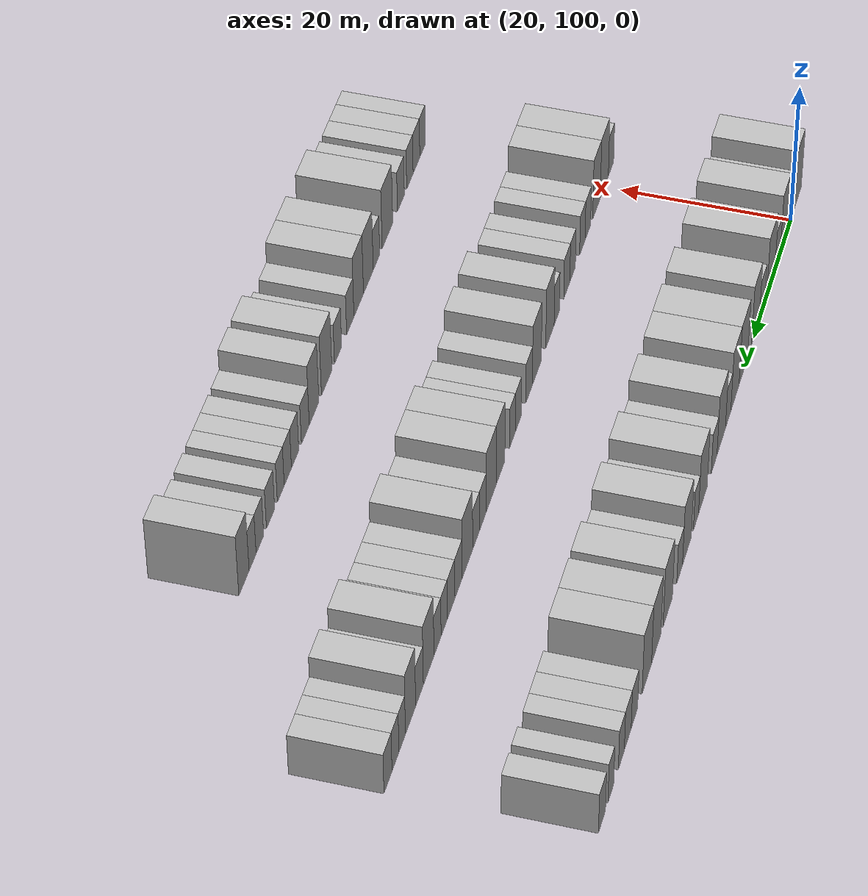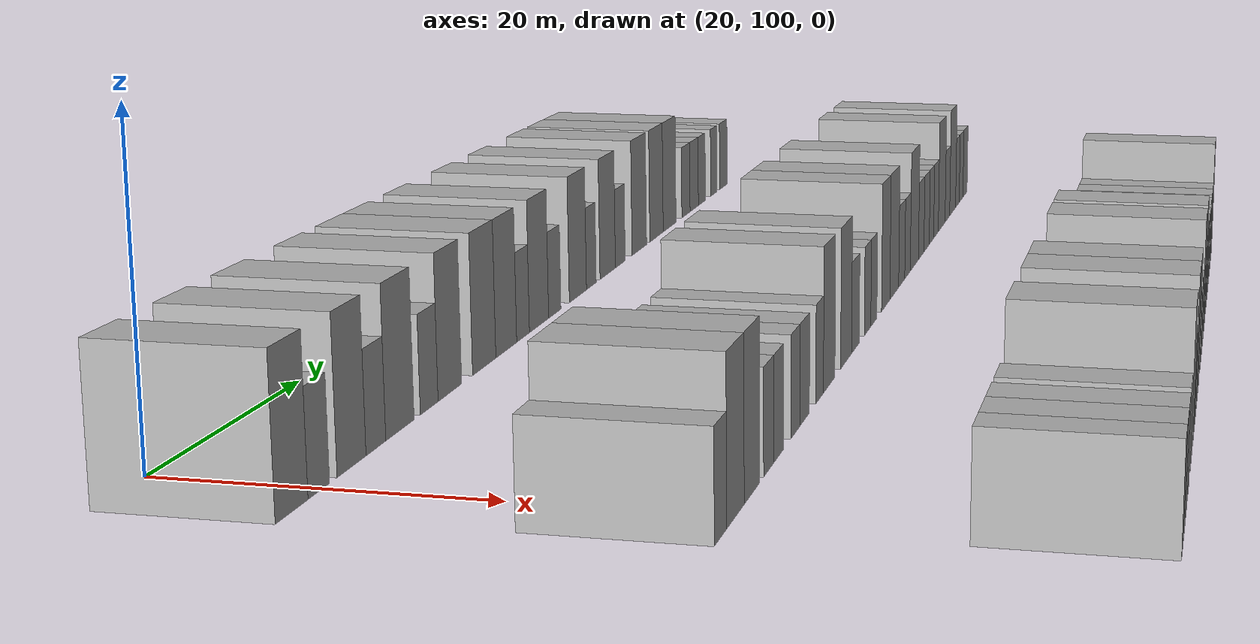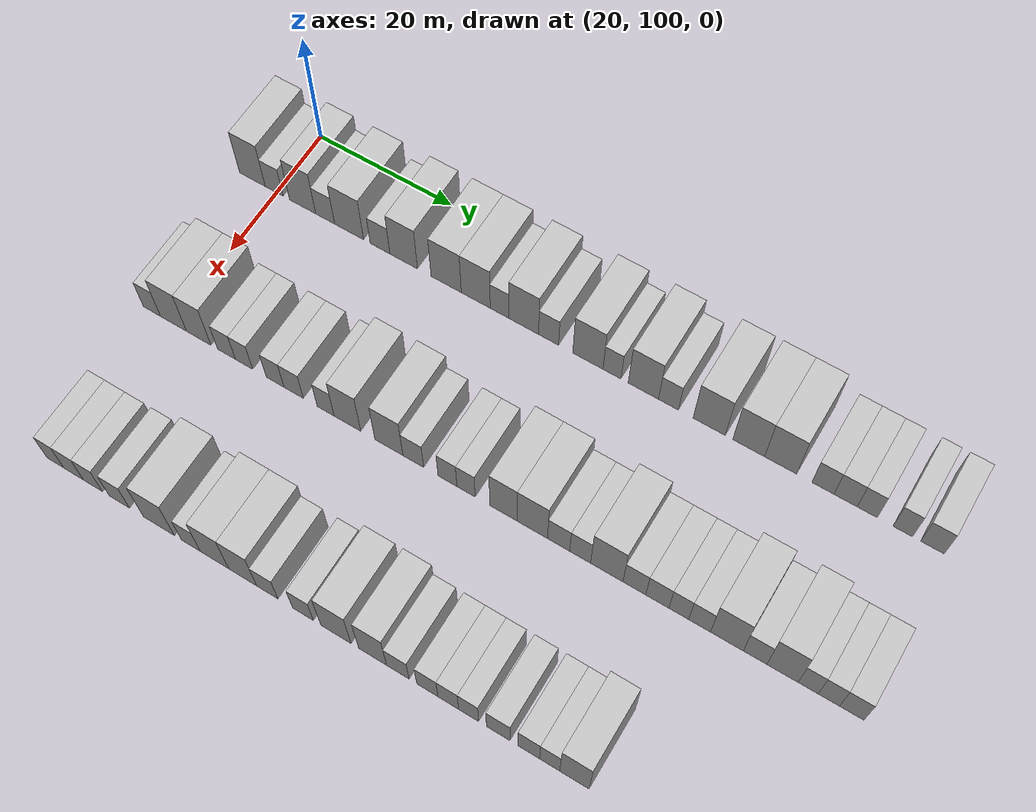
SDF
<sdf version="1.6">
 <world name="default">
  <model name="building_119">
   <static>1</static>
   <pose>25.0000 96.2019 0 0.000000 0.000000 0.000000</pose>
   <link name="link">
    <pose>0 0 4.50 0 0 0</pose>
    <collision name="collision"><geometry><box><size>10.0000 4.0045 9.0000</size></box></geometry></collision>
    <visual name="visual">
     <cast_shadows>0</cast_shadows>
     <geometry><box><size>10.0000 4.0045 9.0000</size></box></geometry>
     <material>
      <script>
       <uri>model://HANNAS_wall/materials/scripts</uri>
       <uri>model://HANNAS_wall/materials/textures</uri>
       <name>vrc/HANNAS_wall</name>
      </script>
     </material>
    </visual>
   </link>
  </model>
  <model name="building_120">
   <static>1</static>
   <pose>25.0000 99.5927 0 0.000000 0.000000 0.000000</pose>
   <link name="link">
    <pose>0 0 3.00 0 0 0</pose>
    <collision name="collision"><geometry><box><size>10.0000 2.7771 6.0000</size></box></geometry></collision>
    <visual name="visual">
     <cast_shadows>0</cast_shadows>
     <geometry><box><size>10.0000 2.7771 6.0000</size></box></geometry>
     <material>
      <script>
       <uri>model://HANNAS_wall/materials/scripts</uri>
       <uri>model://HANNAS_wall/materials/textures</uri>
       <name>vrc/HANNAS_wall</name>
      </script>
     </material>
    </visual>
   </link>
  </model>
  <model name="building_121">
   <static>1</static>
   <pose>25.0000 103.9882 0 0.000000 0.000000 0.000000</pose>
   <link name="link">
    <pose>0 0 4.50 0 0 0</pose>
    <collision name="collision"><geometry><box><size>10.0000 4.0139 9.0000</size></box></geometry></collision>
    <visual name="visual">
     <cast_shadows>0</cast_shadows>
     <geometry><box><size>10.0000 4.0139 9.0000</size></box></geometry>
     <material>
      <script>
       <uri>model://HANNAS_wall/materials/scripts</uri>
       <uri>model://HANNAS_wall/materials/textures</uri>
       <name>vrc/HANNAS_wall</name>
      </script>
     </material>
    </visual>
   </link>
  </model>
  <model name="building_122">
   <static>1</static>
   <pose>25.0000 107.4411 0 0.000000 0.000000 0.000000</pose>
   <link name="link">
    <pose>0 0 3.00 0 0 0</pose>
    <collision name="collision"><geometry><box><size>10.0000 2.8917 6.0000</size></box></geometry></collision>
    <visual name="visual">
     <cast_shadows>0</cast_shadows>
     <geometry><box><size>10.0000 2.8917 6.0000</size></box></geometry>
     <material>
      <script>
       <uri>model://HANNAS_wall/materials/scripts</uri>
       <uri>model://HANNAS_wall/materials/textures</uri>
       <name>vrc/HANNAS_wall</name>
      </script>
     </material>
    </visual>
   </link>
  </model>
  <model name="building_123">
   <static>1</static>
   <pose>25.0000 111.0740 0 0.000000 0.000000 0.000000</pose>
   <link name="link">
    <pose>0 0 4.50 0 0 0</pose>
    <collision name="collision"><geometry><box><size>10.0000 4.3742 9.0000</size></box></geometry></collision>
    <visual name="visual">
     <cast_shadows>0</cast_shadows>
     <geometry><box><size>10.0000 4.3742 9.0000</size></box></geometry>
     <material>
      <script>
       <uri>model://HANNAS_wall/materials/scripts</uri>
       <uri>model://HANNAS_wall/materials/textures</uri>
       <name>vrc/HANNAS_wall</name>
      </script>
     </material>
    </visual>
   </link>
  </model>
  <model name="building_124">
   <static>1</static>
   <pose>25.0000 115.7346 0 0.000000 0.000000 0.000000</pose>
   <link name="link">
    <pose>0 0 3.00 0 0 0</pose>
    <collision name="collision"><geometry><box><size>10.0000 2.9471 6.0000</size></box></geometry></collision>
    <visual name="visual">
     <cast_shadows>0</cast_shadows>
     <geometry><box><size>10.0000 2.9471 6.0000</size></box></geometry>
     <material>
      <script>
       <uri>model://HANNAS_wall/materials/scripts</uri>
       <uri>model://HANNAS_wall/materials/textures</uri>
       <name>vrc/HANNAS_wall</name>
      </script>
     </material>
    </visual>
   </link>
  </model>
  <model name="building_125">
   <static>1</static>
   <pose>25.0000 119.2594 0 0.000000 0.000000 0.000000</pose>
   <link name="link">
    <pose>0 0 4.50 0 0 0</pose>
    <collision name="collision"><geometry><box><size>10.0000 4.1025 9.0000</size></box></geometry></collision>
    <visual name="visual">
     <cast_shadows>0</cast_shadows>
     <geometry><box><size>10.0000 4.1025 9.0000</size></box></geometry>
     <material>
      <script>
       <uri>model://HANNAS_wall/materials/scripts</uri>
       <uri>model://HANNAS_wall/materials/textures</uri>
       <name>vrc/HANNAS_wall</name>
      </script>
     </material>
    </visual>
   </link>
  </model>
  <model name="building_126">
   <static>1</static>
   <pose>25.0000 125.5218 0 0.000000 0.000000 0.000000</pose>
   <link name="link">
    <pose>0 0 4.50 0 0 0</pose>
    <collision name="collision"><geometry><box><size>10.0000 4.4224 9.0000</size></box></geometry></collision>
    <visual name="visual">
     <cast_shadows>0</cast_shadows>
     <geometry><box><size>10.0000 4.4224 9.0000</size></box></geometry>
     <material>
      <script>
       <uri>model://HANNAS_wall/materials/scripts</uri>
       <uri>model://HANNAS_wall/materials/textures</uri>
       <name>vrc/HANNAS_wall</name>
      </script>
     </material>
    </visual>
   </link>
  </model>
  <model name="building_127">
   <static>1</static>
   <pose>25.0000 129.8362 0 0.000000 0.000000 0.000000</pose>
   <link name="link">
    <pose>0 0 4.50 0 0 0</pose>
    <collision name="collision"><geometry><box><size>10.0000 4.2064 9.0000</size></box></geometry></collision>
    <visual name="visual">
     <cast_shadows>0</cast_shadows>
     <geometry><box><size>10.0000 4.2064 9.0000</size></box></geometry>
     <material>
      <script>
       <uri>model://HANNAS_wall/materials/scripts</uri>
       <uri>model://HANNAS_wall/materials/textures</uri>
       <name>vrc/HANNAS_wall</name>
      </script>
     </material>
    </visual>
   </link>
  </model>
  <model name="building_128">
   <static>1</static>
   <pose>25.0000 133.2820 0 0.000000 0.000000 0.000000</pose>
   <link name="link">
    <pose>0 0 3.00 0 0 0</pose>
    <collision name="collision"><geometry><box><size>10.0000 2.6850 6.0000</size></box></geometry></collision>
    <visual name="visual">
     <cast_shadows>0</cast_shadows>
     <geometry><box><size>10.0000 2.6850 6.0000</size></box></geometry>
     <material>
      <script>
       <uri>model://HANNAS_wall/materials/scripts</uri>
       <uri>model://HANNAS_wall/materials/textures</uri>
       <name>vrc/HANNAS_wall</name>
      </script>
     </material>
    </visual>
   </link>
  </model>
  <model name="building_129">
   <static>1</static>
   <pose>25.0000 136.7376 0 0.000000 0.000000 0.000000</pose>
   <link name="link">
    <pose>0 0 4.50 0 0 0</pose>
    <collision name="collision"><geometry><box><size>10.0000 4.2264 9.0000</size></box></geometry></collision>
    <visual name="visual">
     <cast_shadows>0</cast_shadows>
     <geometry><box><size>10.0000 4.2264 9.0000</size></box></geometry>
     <material>
      <script>
       <uri>model://HANNAS_wall/materials/scripts</uri>
       <uri>model://HANNAS_wall/materials/textures</uri>
       <name>vrc/HANNAS_wall</name>
      </script>
     </material>
    </visual>
   </link>
  </model>
  <model name="building_130">
   <static>1</static>
   <pose>25.0000 140.2666 0 0.000000 0.000000 0.000000</pose>
   <link name="link">
    <pose>0 0 3.00 0 0 0</pose>
    <collision name="collision"><geometry><box><size>10.0000 2.8315 6.0000</size></box></geometry></collision>
    <visual name="visual">
     <cast_shadows>0</cast_shadows>
     <geometry><box><size>10.0000 2.8315 6.0000</size></box></geometry>
     <material>
      <script>
       <uri>model://HANNAS_wall/materials/scripts</uri>
       <uri>model://HANNAS_wall/materials/textures</uri>
       <name>vrc/HANNAS_wall</name>
      </script>
     </material>
    </visual>
   </link>
  </model>
  <model name="building_131">
   <static>1</static>
   <pose>25.0000 145.7941 0 0.000000 0.000000 0.000000</pose>
   <link name="link">
    <pose>0 0 4.50 0 0 0</pose>
    <collision name="collision"><geometry><box><size>10.0000 4.2235 9.0000</size></box></geometry></collision>
    <visual name="visual">
     <cast_shadows>0</cast_shadows>
     <geometry><box><size>10.0000 4.2235 9.0000</size></box></geometry>
     <material>
      <script>
       <uri>model://HANNAS_wall/materials/scripts</uri>
       <uri>model://HANNAS_wall/materials/textures</uri>
       <name>vrc/HANNAS_wall</name>
      </script>
     </material>
    </visual>
   </link>
  </model>
  <model name="building_132">
   <static>1</static>
   <pose>25.0000 149.1505 0 0.000000 0.000000 0.000000</pose>
   <link name="link">
    <pose>0 0 3.00 0 0 0</pose>
    <collision name="collision"><geometry><box><size>10.0000 2.4893 6.0000</size></box></geometry></collision>
    <visual name="visual">
     <cast_shadows>0</cast_shadows>
     <geometry><box><size>10.0000 2.4893 6.0000</size></box></geometry>
     <material>
      <script>
       <uri>model://HANNAS_wall/materials/scripts</uri>
       <uri>model://HANNAS_wall/materials/textures</uri>
       <name>vrc/HANNAS_wall</name>
      </script>
     </material>
    </visual>
   </link>
  </model>
  <model name="building_133">
   <static>1</static>
   <pose>25.0000 153.4714 0 0.000000 0.000000 0.000000</pose>
   <link name="link">
    <pose>0 0 4.50 0 0 0</pose>
    <collision name="collision"><geometry><box><size>10.0000 4.1526 9.0000</size></box></geometry></collision>
    <visual name="visual">
     <cast_shadows>0</cast_shadows>
     <geometry><box><size>10.0000 4.1526 9.0000</size></box></geometry>
     <material>
      <script>
       <uri>model://HANNAS_wall/materials/scripts</uri>
       <uri>model://HANNAS_wall/materials/textures</uri>
       <name>vrc/HANNAS_wall</name>
      </script>
     </material>
    </visual>
   </link>
  </model>
  <model name="building_134">
   <static>1</static>
   <pose>25.0000 156.9075 0 0.000000 0.000000 0.000000</pose>
   <link name="link">
    <pose>0 0 3.00 0 0 0</pose>
    <collision name="collision"><geometry><box><size>10.0000 2.7196 6.0000</size></box></geometry></collision>
    <visual name="visual">
     <cast_shadows>0</cast_shadows>
     <geometry><box><size>10.0000 2.7196 6.0000</size></box></geometry>
     <material>
      <script>
       <uri>model://HANNAS_wall/materials/scripts</uri>
       <uri>model://HANNAS_wall/materials/textures</uri>
       <name>vrc/HANNAS_wall</name>
      </script>
     </material>
    </visual>
   </link>
  </model>
  <model name="building_135">
   <static>1</static>
   <pose>25.0000 162.4224 0 0.000000 0.000000 0.000000</pose>
   <link name="link">
    <pose>0 0 4.50 0 0 0</pose>
    <collision name="collision"><geometry><box><size>10.0000 4.3101 9.0000</size></box></geometry></collision>
    <visual name="visual">
     <cast_shadows>0</cast_shadows>
     <geometry><box><size>10.0000 4.3101 9.0000</size></box></geometry>
     <material>
      <script>
       <uri>model://HANNAS_wall/materials/scripts</uri>
       <uri>model://HANNAS_wall/materials/textures</uri>
       <name>vrc/HANNAS_wall</name>
      </script>
     </material>
    </visual>
   </link>
  </model>
  <model name="building_136">
   <static>1</static>
   <pose>25.0000 167.6864 0 0.000000 0.000000 0.000000</pose>
   <link name="link">
    <pose>0 0 4.50 0 0 0</pose>
    <collision name="collision"><geometry><box><size>10.0000 4.2180 9.0000</size></box></geometry></collision>
    <visual name="visual">
     <cast_shadows>0</cast_shadows>
     <geometry><box><size>10.0000 4.2180 9.0000</size></box></geometry>
     <material>
      <script>
       <uri>model://HANNAS_wall/materials/scripts</uri>
       <uri>model://HANNAS_wall/materials/textures</uri>
       <name>vrc/HANNAS_wall</name>
      </script>
     </material>
    </visual>
   </link>
  </model>
  <model name="building_137">
   <static>1</static>
   <pose>25.0000 171.9000 0 0.000000 0.000000 0.000000</pose>
   <link name="link">
    <pose>0 0 4.50 0 0 0</pose>
    <collision name="collision"><geometry><box><size>10.0000 4.2091 9.0000</size></box></geometry></collision>
    <visual name="visual">
     <cast_shadows>0</cast_shadows>
     <geometry><box><size>10.0000 4.2091 9.0000</size></box></geometry>
     <material>
      <script>
       <uri>model://HANNAS_wall/materials/scripts</uri>
       <uri>model://HANNAS_wall/materials/textures</uri>
       <name>vrc/HANNAS_wall</name>
      </script>
     </material>
    </visual>
   </link>
  </model>
  <model name="building_138">
   <static>1</static>
   <pose>25.0000 177.4347 0 0.000000 0.000000 0.000000</pose>
   <link name="link">
    <pose>0 0 3.00 0 0 0</pose>
    <collision name="collision"><geometry><box><size>10.0000 2.8603 6.0000</size></box></geometry></collision>
    <visual name="visual">
     <cast_shadows>0</cast_shadows>
     <geometry><box><size>10.0000 2.8603 6.0000</size></box></geometry>
     <material>
      <script>
       <uri>model://HANNAS_wall/materials/scripts</uri>
       <uri>model://HANNAS_wall/materials/textures</uri>
       <name>vrc/HANNAS_wall</name>
      </script>
     </material>
    </visual>
   </link>
  </model>
  <model name="building_139">
   <static>1</static>
   <pose>25.0000 180.3545 0 0.000000 0.000000 0.000000</pose>
   <link name="link">
    <pose>0 0 3.00 0 0 0</pose>
    <collision name="collision"><geometry><box><size>10.0000 2.9793 6.0000</size></box></geometry></collision>
    <visual name="visual">
     <cast_shadows>0</cast_shadows>
     <geometry><box><size>10.0000 2.9793 6.0000</size></box></geometry>
     <material>
      <script>
       <uri>model://HANNAS_wall/materials/scripts</uri>
       <uri>model://HANNAS_wall/materials/textures</uri>
       <name>vrc/HANNAS_wall</name>
      </script>
     </material>
    </visual>
   </link>
  </model>
  <model name="building_140">
   <static>1</static>
   <pose>25.0000 183.1309 0 0.000000 0.000000 0.000000</pose>
   <link name="link">
    <pose>0 0 3.00 0 0 0</pose>
    <collision name="collision"><geometry><box><size>10.0000 2.5733 6.0000</size></box></geometry></collision>
    <visual name="visual">
     <cast_shadows>0</cast_shadows>
     <geometry><box><size>10.0000 2.5733 6.0000</size></box></geometry>
     <material>
      <script>
       <uri>model://HANNAS_wall/materials/scripts</uri>
       <uri>model://HANNAS_wall/materials/textures</uri>
       <name>vrc/HANNAS_wall</name>
      </script>
     </material>
    </visual>
   </link>
  </model>
  <model name="building_141">
   <static>1</static>
   <pose>25.0000 187.6512 0 0.000000 0.000000 0.000000</pose>
   <link name="link">
    <pose>0 0 3.00 0 0 0</pose>
    <collision name="collision"><geometry><box><size>10.0000 2.4674 6.0000</size></box></geometry></collision>
    <visual name="visual">
     <cast_shadows>0</cast_shadows>
     <geometry><box><size>10.0000 2.4674 6.0000</size></box></geometry>
     <material>
      <script>
       <uri>model://HANNAS_wall/materials/scripts</uri>
       <uri>model://HANNAS_wall/materials/textures</uri>
       <name>vrc/HANNAS_wall</name>
      </script>
     </material>
    </visual>
   </link>
  </model>
  <model name="building_142">
   <static>1</static>
   <pose>25.0000 191.3741 0 0.000000 0.000000 0.000000</pose>
   <link name="link">
    <pose>0 0 3.00 0 0 0</pose>
    <collision name="collision"><geometry><box><size>10.0000 2.9784 6.0000</size></box></geometry></collision>
    <visual name="visual">
     <cast_shadows>0</cast_shadows>
     <geometry><box><size>10.0000 2.9784 6.0000</size></box></geometry>
     <material>
      <script>
       <uri>model://HANNAS_wall/materials/scripts</uri>
       <uri>model://HANNAS_wall/materials/textures</uri>
       <name>vrc/HANNAS_wall</name>
      </script>
     </material>
    </visual>
   </link>
  </model>
  <model name="building_311">
   <static>1</static>
   <pose>47.0000 96.7941 0 0.000000 0.000000 0.000000</pose>
   <link name="link">
    <pose>0 0 3.00 0 0 0</pose>
    <collision name="collision"><geometry><box><size>10.0000 2.6091 6.0000</size></box></geometry></collision>
    <visual name="visual">
     <cast_shadows>0</cast_shadows>
     <geometry><box><size>10.0000 2.6091 6.0000</size></box></geometry>
     <material>
      <script>
       <uri>model://HANNAS_wall/materials/scripts</uri>
       <uri>model://HANNAS_wall/materials/textures</uri>
       <name>vrc/HANNAS_wall</name>
      </script>
     </material>
    </visual>
   </link>
  </model>
  <model name="building_312">
   <static>1</static>
   <pose>47.0000 100.0630 0 0.000000 0.000000 0.000000</pose>
   <link name="link">
    <pose>0 0 4.50 0 0 0</pose>
    <collision name="collision"><geometry><box><size>10.0000 3.9286 9.0000</size></box></geometry></collision>
    <visual name="visual">
     <cast_shadows>0</cast_shadows>
     <geometry><box><size>10.0000 3.9286 9.0000</size></box></geometry>
     <material>
      <script>
       <uri>model://HANNAS_wall/materials/scripts</uri>
       <uri>model://HANNAS_wall/materials/textures</uri>
       <name>vrc/HANNAS_wall</name>
      </script>
     </material>
    </visual>
   </link>
  </model>
  <model name="building_313">
   <static>1</static>
   <pose>47.0000 103.8683 0 0.000000 0.000000 0.000000</pose>
   <link name="link">
    <pose>0 0 4.50 0 0 0</pose>
    <collision name="collision"><geometry><box><size>10.0000 3.6820 9.0000</size></box></geometry></collision>
    <visual name="visual">
     <cast_shadows>0</cast_shadows>
     <geometry><box><size>10.0000 3.6820 9.0000</size></box></geometry>
     <material>
      <script>
       <uri>model://HANNAS_wall/materials/scripts</uri>
       <uri>model://HANNAS_wall/materials/textures</uri>
       <name>vrc/HANNAS_wall</name>
      </script>
     </material>
    </visual>
   </link>
  </model>
  <model name="building_314">
   <static>1</static>
   <pose>47.0000 108.0330 0 0.000000 0.000000 0.000000</pose>
   <link name="link">
    <pose>0 0 3.00 0 0 0</pose>
    <collision name="collision"><geometry><box><size>10.0000 2.6473 6.0000</size></box></geometry></collision>
    <visual name="visual">
     <cast_shadows>0</cast_shadows>
     <geometry><box><size>10.0000 2.6473 6.0000</size></box></geometry>
     <material>
      <script>
       <uri>model://HANNAS_wall/materials/scripts</uri>
       <uri>model://HANNAS_wall/materials/textures</uri>
       <name>vrc/HANNAS_wall</name>
      </script>
     </material>
    </visual>
   </link>
  </model>
  <model name="building_315">
   <static>1</static>
   <pose>47.0000 110.6393 0 0.000000 0.000000 0.000000</pose>
   <link name="link">
    <pose>0 0 3.00 0 0 0</pose>
    <collision name="collision"><geometry><box><size>10.0000 2.5653 6.0000</size></box></geometry></collision>
    <visual name="visual">
     <cast_shadows>0</cast_shadows>
     <geometry><box><size>10.0000 2.5653 6.0000</size></box></geometry>
     <material>
      <script>
       <uri>model://HANNAS_wall/materials/scripts</uri>
       <uri>model://HANNAS_wall/materials/textures</uri>
       <name>vrc/HANNAS_wall</name>
      </script>
     </material>
    </visual>
   </link>
  </model>
  <model name="building_316">
   <static>1</static>
   <pose>47.0000 115.2153 0 0.000000 0.000000 0.000000</pose>
   <link name="link">
    <pose>0 0 3.00 0 0 0</pose>
    <collision name="collision"><geometry><box><size>10.0000 2.5867 6.0000</size></box></geometry></collision>
    <visual name="visual">
     <cast_shadows>0</cast_shadows>
     <geometry><box><size>10.0000 2.5867 6.0000</size></box></geometry>
     <material>
      <script>
       <uri>model://HANNAS_wall/materials/scripts</uri>
       <uri>model://HANNAS_wall/materials/textures</uri>
       <name>vrc/HANNAS_wall</name>
      </script>
     </material>
    </visual>
   </link>
  </model>
  <model name="building_317">
   <static>1</static>
   <pose>47.0000 117.9178 0 0.000000 0.000000 0.000000</pose>
   <link name="link">
    <pose>0 0 3.00 0 0 0</pose>
    <collision name="collision"><geometry><box><size>10.0000 2.8183 6.0000</size></box></geometry></collision>
    <visual name="visual">
     <cast_shadows>0</cast_shadows>
     <geometry><box><size>10.0000 2.8183 6.0000</size></box></geometry>
     <material>
      <script>
       <uri>model://HANNAS_wall/materials/scripts</uri>
       <uri>model://HANNAS_wall/materials/textures</uri>
       <name>vrc/HANNAS_wall</name>
      </script>
     </material>
    </visual>
   </link>
  </model>
  <model name="building_318">
   <static>1</static>
   <pose>47.0000 122.5435 0 0.000000 0.000000 0.000000</pose>
   <link name="link">
    <pose>0 0 3.00 0 0 0</pose>
    <collision name="collision"><geometry><box><size>10.0000 2.4330 6.0000</size></box></geometry></collision>
    <visual name="visual">
     <cast_shadows>0</cast_shadows>
     <geometry><box><size>10.0000 2.4330 6.0000</size></box></geometry>
     <material>
      <script>
       <uri>model://HANNAS_wall/materials/scripts</uri>
       <uri>model://HANNAS_wall/materials/textures</uri>
       <name>vrc/HANNAS_wall</name>
      </script>
     </material>
    </visual>
   </link>
  </model>
  <model name="building_319">
   <static>1</static>
   <pose>47.0000 125.6582 0 0.000000 0.000000 0.000000</pose>
   <link name="link">
    <pose>0 0 4.50 0 0 0</pose>
    <collision name="collision"><geometry><box><size>10.0000 3.7963 9.0000</size></box></geometry></collision>
    <visual name="visual">
     <cast_shadows>0</cast_shadows>
     <geometry><box><size>10.0000 3.7963 9.0000</size></box></geometry>
     <material>
      <script>
       <uri>model://HANNAS_wall/materials/scripts</uri>
       <uri>model://HANNAS_wall/materials/textures</uri>
       <name>vrc/HANNAS_wall</name>
      </script>
     </material>
    </visual>
   </link>
  </model>
  <model name="building_320">
   <static>1</static>
   <pose>47.0000 131.5329 0 0.000000 0.000000 0.000000</pose>
   <link name="link">
    <pose>0 0 4.50 0 0 0</pose>
    <collision name="collision"><geometry><box><size>10.0000 3.9530 9.0000</size></box></geometry></collision>
    <visual name="visual">
     <cast_shadows>0</cast_shadows>
     <geometry><box><size>10.0000 3.9530 9.0000</size></box></geometry>
     <material>
      <script>
       <uri>model://HANNAS_wall/materials/scripts</uri>
       <uri>model://HANNAS_wall/materials/textures</uri>
       <name>vrc/HANNAS_wall</name>
      </script>
     </material>
    </visual>
   </link>
  </model>
  <model name="building_321">
   <static>1</static>
   <pose>47.0000 134.9560 0 0.000000 0.000000 0.000000</pose>
   <link name="link">
    <pose>0 0 3.00 0 0 0</pose>
    <collision name="collision"><geometry><box><size>10.0000 2.8932 6.0000</size></box></geometry></collision>
    <visual name="visual">
     <cast_shadows>0</cast_shadows>
     <geometry><box><size>10.0000 2.8932 6.0000</size></box></geometry>
     <material>
      <script>
       <uri>model://HANNAS_wall/materials/scripts</uri>
       <uri>model://HANNAS_wall/materials/textures</uri>
       <name>vrc/HANNAS_wall</name>
      </script>
     </material>
    </visual>
   </link>
  </model>
  <model name="building_322">
   <static>1</static>
   <pose>47.0000 139.7019 0 0.000000 0.000000 0.000000</pose>
   <link name="link">
    <pose>0 0 3.00 0 0 0</pose>
    <collision name="collision"><geometry><box><size>10.0000 2.5986 6.0000</size></box></geometry></collision>
    <visual name="visual">
     <cast_shadows>0</cast_shadows>
     <geometry><box><size>10.0000 2.5986 6.0000</size></box></geometry>
     <material>
      <script>
       <uri>model://HANNAS_wall/materials/scripts</uri>
       <uri>model://HANNAS_wall/materials/textures</uri>
       <name>vrc/HANNAS_wall</name>
      </script>
     </material>
    </visual>
   </link>
  </model>
  <model name="building_323">
   <static>1</static>
   <pose>47.0000 142.2545 0 0.000000 0.000000 0.000000</pose>
   <link name="link">
    <pose>0 0 3.00 0 0 0</pose>
    <collision name="collision"><geometry><box><size>10.0000 2.5067 6.0000</size></box></geometry></collision>
    <visual name="visual">
     <cast_shadows>0</cast_shadows>
     <geometry><box><size>10.0000 2.5067 6.0000</size></box></geometry>
     <material>
      <script>
       <uri>model://HANNAS_wall/materials/scripts</uri>
       <uri>model://HANNAS_wall/materials/textures</uri>
       <name>vrc/HANNAS_wall</name>
      </script>
     </material>
    </visual>
   </link>
  </model>
  <model name="building_324">
   <static>1</static>
   <pose>47.0000 147.3514 0 0.000000 0.000000 0.000000</pose>
   <link name="link">
    <pose>0 0 4.50 0 0 0</pose>
    <collision name="collision"><geometry><box><size>10.0000 3.6872 9.0000</size></box></geometry></collision>
    <visual name="visual">
     <cast_shadows>0</cast_shadows>
     <geometry><box><size>10.0000 3.6872 9.0000</size></box></geometry>
     <material>
      <script>
       <uri>model://HANNAS_wall/materials/scripts</uri>
       <uri>model://HANNAS_wall/materials/textures</uri>
       <name>vrc/HANNAS_wall</name>
      </script>
     </material>
    </visual>
   </link>
  </model>
  <model name="building_325">
   <static>1</static>
   <pose>47.0000 151.2373 0 0.000000 0.000000 0.000000</pose>
   <link name="link">
    <pose>0 0 4.50 0 0 0</pose>
    <collision name="collision"><geometry><box><size>10.0000 4.0845 9.0000</size></box></geometry></collision>
    <visual name="visual">
     <cast_shadows>0</cast_shadows>
     <geometry><box><size>10.0000 4.0845 9.0000</size></box></geometry>
     <material>
      <script>
       <uri>model://HANNAS_wall/materials/scripts</uri>
       <uri>model://HANNAS_wall/materials/textures</uri>
       <name>vrc/HANNAS_wall</name>
      </script>
     </material>
    </visual>
   </link>
  </model>
  <model name="building_326">
   <static>1</static>
   <pose>47.0000 154.7489 0 0.000000 0.000000 0.000000</pose>
   <link name="link">
    <pose>0 0 3.00 0 0 0</pose>
    <collision name="collision"><geometry><box><size>10.0000 2.9387 6.0000</size></box></geometry></collision>
    <visual name="visual">
     <cast_shadows>0</cast_shadows>
     <geometry><box><size>10.0000 2.9387 6.0000</size></box></geometry>
     <material>
      <script>
       <uri>model://HANNAS_wall/materials/scripts</uri>
       <uri>model://HANNAS_wall/materials/textures</uri>
       <name>vrc/HANNAS_wall</name>
      </script>
     </material>
    </visual>
   </link>
  </model>
  <model name="building_327">
   <static>1</static>
   <pose>47.0000 157.5987 0 0.000000 0.000000 0.000000</pose>
   <link name="link">
    <pose>0 0 3.00 0 0 0</pose>
    <collision name="collision"><geometry><box><size>10.0000 2.7608 6.0000</size></box></geometry></collision>
    <visual name="visual">
     <cast_shadows>0</cast_shadows>
     <geometry><box><size>10.0000 2.7608 6.0000</size></box></geometry>
     <material>
      <script>
       <uri>model://HANNAS_wall/materials/scripts</uri>
       <uri>model://HANNAS_wall/materials/textures</uri>
       <name>vrc/HANNAS_wall</name>
      </script>
     </material>
    </visual>
   </link>
  </model>
  <model name="building_328">
   <static>1</static>
   <pose>47.0000 161.1033 0 0.000000 0.000000 0.000000</pose>
   <link name="link">
    <pose>0 0 4.50 0 0 0</pose>
    <collision name="collision"><geometry><box><size>10.0000 4.2485 9.0000</size></box></geometry></collision>
    <visual name="visual">
     <cast_shadows>0</cast_shadows>
     <geometry><box><size>10.0000 4.2485 9.0000</size></box></geometry>
     <material>
      <script>
       <uri>model://HANNAS_wall/materials/scripts</uri>
       <uri>model://HANNAS_wall/materials/textures</uri>
       <name>vrc/HANNAS_wall</name>
      </script>
     </material>
    </visual>
   </link>
  </model>
  <model name="building_329">
   <static>1</static>
   <pose>47.0000 164.7039 0 0.000000 0.000000 0.000000</pose>
   <link name="link">
    <pose>0 0 3.00 0 0 0</pose>
    <collision name="collision"><geometry><box><size>10.0000 2.9526 6.0000</size></box></geometry></collision>
    <visual name="visual">
     <cast_shadows>0</cast_shadows>
     <geometry><box><size>10.0000 2.9526 6.0000</size></box></geometry>
     <material>
      <script>
       <uri>model://HANNAS_wall/materials/scripts</uri>
       <uri>model://HANNAS_wall/materials/textures</uri>
       <name>vrc/HANNAS_wall</name>
      </script>
     </material>
    </visual>
   </link>
  </model>
  <model name="building_330">
   <static>1</static>
   <pose>47.0000 167.6714 0 0.000000 0.000000 0.000000</pose>
   <link name="link">
    <pose>0 0 3.00 0 0 0</pose>
    <collision name="collision"><geometry><box><size>10.0000 2.9824 6.0000</size></box></geometry></collision>
    <visual name="visual">
     <cast_shadows>0</cast_shadows>
     <geometry><box><size>10.0000 2.9824 6.0000</size></box></geometry>
     <material>
      <script>
       <uri>model://HANNAS_wall/materials/scripts</uri>
       <uri>model://HANNAS_wall/materials/textures</uri>
       <name>vrc/HANNAS_wall</name>
      </script>
     </material>
    </visual>
   </link>
  </model>
  <model name="building_331">
   <static>1</static>
   <pose>47.0000 170.4229 0 0.000000 0.000000 0.000000</pose>
   <link name="link">
    <pose>0 0 3.00 0 0 0</pose>
    <collision name="collision"><geometry><box><size>10.0000 2.5207 6.0000</size></box></geometry></collision>
    <visual name="visual">
     <cast_shadows>0</cast_shadows>
     <geometry><box><size>10.0000 2.5207 6.0000</size></box></geometry>
     <material>
      <script>
       <uri>model://HANNAS_wall/materials/scripts</uri>
       <uri>model://HANNAS_wall/materials/textures</uri>
       <name>vrc/HANNAS_wall</name>
      </script>
     </material>
    </visual>
   </link>
  </model>
  <model name="building_332">
   <static>1</static>
   <pose>47.0000 173.0755 0 0.000000 0.000000 0.000000</pose>
   <link name="link">
    <pose>0 0 3.00 0 0 0</pose>
    <collision name="collision"><geometry><box><size>10.0000 2.7846 6.0000</size></box></geometry></collision>
    <visual name="visual">
     <cast_shadows>0</cast_shadows>
     <geometry><box><size>10.0000 2.7846 6.0000</size></box></geometry>
     <material>
      <script>
       <uri>model://HANNAS_wall/materials/scripts</uri>
       <uri>model://HANNAS_wall/materials/textures</uri>
       <name>vrc/HANNAS_wall</name>
      </script>
     </material>
    </visual>
   </link>
  </model>
  <model name="building_333">
   <static>1</static>
   <pose>47.0000 176.5328 0 0.000000 0.000000 0.000000</pose>
   <link name="link">
    <pose>0 0 4.50 0 0 0</pose>
    <collision name="collision"><geometry><box><size>10.0000 4.1300 9.0000</size></box></geometry></collision>
    <visual name="visual">
     <cast_shadows>0</cast_shadows>
     <geometry><box><size>10.0000 4.1300 9.0000</size></box></geometry>
     <material>
      <script>
       <uri>model://HANNAS_wall/materials/scripts</uri>
       <uri>model://HANNAS_wall/materials/textures</uri>
       <name>vrc/HANNAS_wall</name>
      </script>
     </material>
    </visual>
   </link>
  </model>
  <model name="building_334">
   <static>1</static>
   <pose>47.0000 180.0702 0 0.000000 0.000000 0.000000</pose>
   <link name="link">
    <pose>0 0 3.00 0 0 0</pose>
    <collision name="collision"><geometry><box><size>10.0000 2.9449 6.0000</size></box></geometry></collision>
    <visual name="visual">
     <cast_shadows>0</cast_shadows>
     <geometry><box><size>10.0000 2.9449 6.0000</size></box></geometry>
     <material>
      <script>
       <uri>model://HANNAS_wall/materials/scripts</uri>
       <uri>model://HANNAS_wall/materials/textures</uri>
       <name>vrc/HANNAS_wall</name>
      </script>
     </material>
    </visual>
   </link>
  </model>
  <model name="building_335">
   <static>1</static>
   <pose>47.0000 183.4816 0 0.000000 0.000000 0.000000</pose>
   <link name="link">
    <pose>0 0 4.50 0 0 0</pose>
    <collision name="collision"><geometry><box><size>10.0000 3.8779 9.0000</size></box></geometry></collision>
    <visual name="visual">
     <cast_shadows>0</cast_shadows>
     <geometry><box><size>10.0000 3.8779 9.0000</size></box></geometry>
     <material>
      <script>
       <uri>model://HANNAS_wall/materials/scripts</uri>
       <uri>model://HANNAS_wall/materials/textures</uri>
       <name>vrc/HANNAS_wall</name>
      </script>
     </material>
    </visual>
   </link>
  </model>
  <model name="building_336">
   <static>1</static>
   <pose>47.0000 186.6422 0 0.000000 0.000000 0.000000</pose>
   <link name="link">
    <pose>0 0 3.00 0 0 0</pose>
    <collision name="collision"><geometry><box><size>10.0000 2.4434 6.0000</size></box></geometry></collision>
    <visual name="visual">
     <cast_shadows>0</cast_shadows>
     <geometry><box><size>10.0000 2.4434 6.0000</size></box></geometry>
     <material>
      <script>
       <uri>model://HANNAS_wall/materials/scripts</uri>
       <uri>model://HANNAS_wall/materials/textures</uri>
       <name>vrc/HANNAS_wall</name>
      </script>
     </material>
    </visual>
   </link>
  </model>
  <model name="building_337">
   <static>1</static>
   <pose>47.0000 189.1638 0 0.000000 0.000000 0.000000</pose>
   <link name="link">
    <pose>0 0 3.00 0 0 0</pose>
    <collision name="collision"><geometry><box><size>10.0000 2.5997 6.0000</size></box></geometry></collision>
    <visual name="visual">
     <cast_shadows>0</cast_shadows>
     <geometry><box><size>10.0000 2.5997 6.0000</size></box></geometry>
     <material>
      <script>
       <uri>model://HANNAS_wall/materials/scripts</uri>
       <uri>model://HANNAS_wall/materials/textures</uri>
       <name>vrc/HANNAS_wall</name>
      </script>
     </material>
    </visual>
   </link>
  </model>
  <model name="building_338">
   <static>1</static>
   <pose>47.0000 191.9463 0 0.000000 0.000000 0.000000</pose>
   <link name="link">
    <pose>0 0 3.00 0 0 0</pose>
    <collision name="collision"><geometry><box><size>10.0000 2.9653 6.0000</size></box></geometry></collision>
    <visual name="visual">
     <cast_shadows>0</cast_shadows>
     <geometry><box><size>10.0000 2.9653 6.0000</size></box></geometry>
     <material>
      <script>
       <uri>model://HANNAS_wall/materials/scripts</uri>
       <uri>model://HANNAS_wall/materials/textures</uri>
       <name>vrc/HANNAS_wall</name>
      </script>
     </material>
    </visual>
   </link>
  </model>
  <model name="building_508">
   <static>1</static>
   <pose>69.0000 99.2901 0 0.000000 0.000000 0.000000</pose>
   <link name="link">
    <pose>0 0 3.00 0 0 0</pose>
    <collision name="collision"><geometry><box><size>10.0000 2.4729 6.0000</size></box></geometry></collision>
    <visual name="visual">
     <cast_shadows>0</cast_shadows>
     <geometry><box><size>10.0000 2.4729 6.0000</size></box></geometry>
     <material>
      <script>
       <uri>model://HANNAS_wall/materials/scripts</uri>
       <uri>model://HANNAS_wall/materials/textures</uri>
       <name>vrc/HANNAS_wall</name>
      </script>
     </material>
    </visual>
   </link>
  </model>
  <model name="building_509">
   <static>1</static>
   <pose>69.0000 101.9887 0 0.000000 0.000000 0.000000</pose>
   <link name="link">
    <pose>0 0 3.00 0 0 0</pose>
    <collision name="collision"><geometry><box><size>10.0000 2.9243 6.0000</size></box></geometry></collision>
    <visual name="visual">
     <cast_shadows>0</cast_shadows>
     <geometry><box><size>10.0000 2.9243 6.0000</size></box></geometry>
     <material>
      <script>
       <uri>model://HANNAS_wall/materials/scripts</uri>
       <uri>model://HANNAS_wall/materials/textures</uri>
       <name>vrc/HANNAS_wall</name>
      </script>
     </material>
    </visual>
   </link>
  </model>
  <model name="building_510">
   <static>1</static>
   <pose>69.0000 104.8358 0 0.000000 0.000000 0.000000</pose>
   <link name="link">
    <pose>0 0 3.00 0 0 0</pose>
    <collision name="collision"><geometry><box><size>10.0000 2.7700 6.0000</size></box></geometry></collision>
    <visual name="visual">
     <cast_shadows>0</cast_shadows>
     <geometry><box><size>10.0000 2.7700 6.0000</size></box></geometry>
     <material>
      <script>
       <uri>model://HANNAS_wall/materials/scripts</uri>
       <uri>model://HANNAS_wall/materials/textures</uri>
       <name>vrc/HANNAS_wall</name>
      </script>
     </material>
    </visual>
   </link>
  </model>
  <model name="building_511">
   <static>1</static>
   <pose>69.0000 108.6888 0 0.000000 0.000000 0.000000</pose>
   <link name="link">
    <pose>0 0 3.00 0 0 0</pose>
    <collision name="collision"><geometry><box><size>10.0000 2.9358 6.0000</size></box></geometry></collision>
    <visual name="visual">
     <cast_shadows>0</cast_shadows>
     <geometry><box><size>10.0000 2.9358 6.0000</size></box></geometry>
     <material>
      <script>
       <uri>model://HANNAS_wall/materials/scripts</uri>
       <uri>model://HANNAS_wall/materials/textures</uri>
       <name>vrc/HANNAS_wall</name>
      </script>
     </material>
    </visual>
   </link>
  </model>
  <model name="building_512">
   <static>1</static>
   <pose>69.0000 114.3816 0 0.000000 0.000000 0.000000</pose>
   <link name="link">
    <pose>0 0 4.50 0 0 0</pose>
    <collision name="collision"><geometry><box><size>10.0000 4.4498 9.0000</size></box></geometry></collision>
    <visual name="visual">
     <cast_shadows>0</cast_shadows>
     <geometry><box><size>10.0000 4.4498 9.0000</size></box></geometry>
     <material>
      <script>
       <uri>model://HANNAS_wall/materials/scripts</uri>
       <uri>model://HANNAS_wall/materials/textures</uri>
       <name>vrc/HANNAS_wall</name>
      </script>
     </material>
    </visual>
   </link>
  </model>
  <model name="building_513">
   <static>1</static>
   <pose>69.0000 118.9450 0 0.000000 0.000000 0.000000</pose>
   <link name="link">
    <pose>0 0 3.00 0 0 0</pose>
    <collision name="collision"><geometry><box><size>10.0000 2.6772 6.0000</size></box></geometry></collision>
    <visual name="visual">
     <cast_shadows>0</cast_shadows>
     <geometry><box><size>10.0000 2.6772 6.0000</size></box></geometry>
     <material>
      <script>
       <uri>model://HANNAS_wall/materials/scripts</uri>
       <uri>model://HANNAS_wall/materials/textures</uri>
       <name>vrc/HANNAS_wall</name>
      </script>
     </material>
    </visual>
   </link>
  </model>
  <model name="building_514">
   <static>1</static>
   <pose>69.0000 122.2828 0 0.000000 0.000000 0.000000</pose>
   <link name="link">
    <pose>0 0 4.50 0 0 0</pose>
    <collision name="collision"><geometry><box><size>10.0000 3.9984 9.0000</size></box></geometry></collision>
    <visual name="visual">
     <cast_shadows>0</cast_shadows>
     <geometry><box><size>10.0000 3.9984 9.0000</size></box></geometry>
     <material>
      <script>
       <uri>model://HANNAS_wall/materials/scripts</uri>
       <uri>model://HANNAS_wall/materials/textures</uri>
       <name>vrc/HANNAS_wall</name>
      </script>
     </material>
    </visual>
   </link>
  </model>
  <model name="building_515">
   <static>1</static>
   <pose>69.0000 126.2172 0 0.000000 0.000000 0.000000</pose>
   <link name="link">
    <pose>0 0 4.50 0 0 0</pose>
    <collision name="collision"><geometry><box><size>10.0000 3.8705 9.0000</size></box></geometry></collision>
    <visual name="visual">
     <cast_shadows>0</cast_shadows>
     <geometry><box><size>10.0000 3.8705 9.0000</size></box></geometry>
     <material>
      <script>
       <uri>model://HANNAS_wall/materials/scripts</uri>
       <uri>model://HANNAS_wall/materials/textures</uri>
       <name>vrc/HANNAS_wall</name>
      </script>
     </material>
    </visual>
   </link>
  </model>
  <model name="building_516">
   <static>1</static>
   <pose>69.0000 129.6154 0 0.000000 0.000000 0.000000</pose>
   <link name="link">
    <pose>0 0 3.00 0 0 0</pose>
    <collision name="collision"><geometry><box><size>10.0000 2.9259 6.0000</size></box></geometry></collision>
    <visual name="visual">
     <cast_shadows>0</cast_shadows>
     <geometry><box><size>10.0000 2.9259 6.0000</size></box></geometry>
     <material>
      <script>
       <uri>model://HANNAS_wall/materials/scripts</uri>
       <uri>model://HANNAS_wall/materials/textures</uri>
       <name>vrc/HANNAS_wall</name>
      </script>
     </material>
    </visual>
   </link>
  </model>
  <model name="building_517">
   <static>1</static>
   <pose>69.0000 134.4961 0 0.000000 0.000000 0.000000</pose>
   <link name="link">
    <pose>0 0 3.00 0 0 0</pose>
    <collision name="collision"><geometry><box><size>10.0000 2.8355 6.0000</size></box></geometry></collision>
    <visual name="visual">
     <cast_shadows>0</cast_shadows>
     <geometry><box><size>10.0000 2.8355 6.0000</size></box></geometry>
     <material>
      <script>
       <uri>model://HANNAS_wall/materials/scripts</uri>
       <uri>model://HANNAS_wall/materials/textures</uri>
       <name>vrc/HANNAS_wall</name>
      </script>
     </material>
    </visual>
   </link>
  </model>
  <model name="building_518">
   <static>1</static>
   <pose>69.0000 138.9557 0 0.000000 0.000000 0.000000</pose>
   <link name="link">
    <pose>0 0 4.50 0 0 0</pose>
    <collision name="collision"><geometry><box><size>10.0000 4.0837 9.0000</size></box></geometry></collision>
    <visual name="visual">
     <cast_shadows>0</cast_shadows>
     <geometry><box><size>10.0000 4.0837 9.0000</size></box></geometry>
     <material>
      <script>
       <uri>model://HANNAS_wall/materials/scripts</uri>
       <uri>model://HANNAS_wall/materials/textures</uri>
       <name>vrc/HANNAS_wall</name>
      </script>
     </material>
    </visual>
   </link>
  </model>
  <model name="building_519">
   <static>1</static>
   <pose>69.0000 143.8538 0 0.000000 0.000000 0.000000</pose>
   <link name="link">
    <pose>0 0 4.50 0 0 0</pose>
    <collision name="collision"><geometry><box><size>10.0000 3.7126 9.0000</size></box></geometry></collision>
    <visual name="visual">
     <cast_shadows>0</cast_shadows>
     <geometry><box><size>10.0000 3.7126 9.0000</size></box></geometry>
     <material>
      <script>
       <uri>model://HANNAS_wall/materials/scripts</uri>
       <uri>model://HANNAS_wall/materials/textures</uri>
       <name>vrc/HANNAS_wall</name>
      </script>
     </material>
    </visual>
   </link>
  </model>
  <model name="building_520">
   <static>1</static>
   <pose>69.0000 147.1983 0 0.000000 0.000000 0.000000</pose>
   <link name="link">
    <pose>0 0 3.00 0 0 0</pose>
    <collision name="collision"><geometry><box><size>10.0000 2.9764 6.0000</size></box></geometry></collision>
    <visual name="visual">
     <cast_shadows>0</cast_shadows>
     <geometry><box><size>10.0000 2.9764 6.0000</size></box></geometry>
     <material>
      <script>
       <uri>model://HANNAS_wall/materials/scripts</uri>
       <uri>model://HANNAS_wall/materials/textures</uri>
       <name>vrc/HANNAS_wall</name>
      </script>
     </material>
    </visual>
   </link>
  </model>
  <model name="building_521">
   <static>1</static>
   <pose>69.0000 151.0683 0 0.000000 0.000000 0.000000</pose>
   <link name="link">
    <pose>0 0 3.00 0 0 0</pose>
    <collision name="collision"><geometry><box><size>10.0000 2.7636 6.0000</size></box></geometry></collision>
    <visual name="visual">
     <cast_shadows>0</cast_shadows>
     <geometry><box><size>10.0000 2.7636 6.0000</size></box></geometry>
     <material>
      <script>
       <uri>model://HANNAS_wall/materials/scripts</uri>
       <uri>model://HANNAS_wall/materials/textures</uri>
       <name>vrc/HANNAS_wall</name>
      </script>
     </material>
    </visual>
   </link>
  </model>
  <model name="building_522">
   <static>1</static>
   <pose>69.0000 153.7910 0 0.000000 0.000000 0.000000</pose>
   <link name="link">
    <pose>0 0 3.00 0 0 0</pose>
    <collision name="collision"><geometry><box><size>10.0000 2.6817 6.0000</size></box></geometry></collision>
    <visual name="visual">
     <cast_shadows>0</cast_shadows>
     <geometry><box><size>10.0000 2.6817 6.0000</size></box></geometry>
     <material>
      <script>
       <uri>model://HANNAS_wall/materials/scripts</uri>
       <uri>model://HANNAS_wall/materials/textures</uri>
       <name>vrc/HANNAS_wall</name>
      </script>
     </material>
    </visual>
   </link>
  </model>
  <model name="building_523">
   <static>1</static>
   <pose>69.0000 156.4145 0 0.000000 0.000000 0.000000</pose>
   <link name="link">
    <pose>0 0 3.00 0 0 0</pose>
    <collision name="collision"><geometry><box><size>10.0000 2.5653 6.0000</size></box></geometry></collision>
    <visual name="visual">
     <cast_shadows>0</cast_shadows>
     <geometry><box><size>10.0000 2.5653 6.0000</size></box></geometry>
     <material>
      <script>
       <uri>model://HANNAS_wall/materials/scripts</uri>
       <uri>model://HANNAS_wall/materials/textures</uri>
       <name>vrc/HANNAS_wall</name>
      </script>
     </material>
    </visual>
   </link>
  </model>
  <model name="building_524">
   <static>1</static>
   <pose>69.0000 160.1949 0 0.000000 0.000000 0.000000</pose>
   <link name="link">
    <pose>0 0 3.00 0 0 0</pose>
    <collision name="collision"><geometry><box><size>10.0000 2.9955 6.0000</size></box></geometry></collision>
    <visual name="visual">
     <cast_shadows>0</cast_shadows>
     <geometry><box><size>10.0000 2.9955 6.0000</size></box></geometry>
     <material>
      <script>
       <uri>model://HANNAS_wall/materials/scripts</uri>
       <uri>model://HANNAS_wall/materials/textures</uri>
       <name>vrc/HANNAS_wall</name>
      </script>
     </material>
    </visual>
   </link>
  </model>
  <model name="building_525">
   <static>1</static>
   <pose>69.0000 164.0626 0 0.000000 0.000000 0.000000</pose>
   <link name="link">
    <pose>0 0 3.00 0 0 0</pose>
    <collision name="collision"><geometry><box><size>10.0000 2.7399 6.0000</size></box></geometry></collision>
    <visual name="visual">
     <cast_shadows>0</cast_shadows>
     <geometry><box><size>10.0000 2.7399 6.0000</size></box></geometry>
     <material>
      <script>
       <uri>model://HANNAS_wall/materials/scripts</uri>
       <uri>model://HANNAS_wall/materials/textures</uri>
       <name>vrc/HANNAS_wall</name>
      </script>
     </material>
    </visual>
   </link>
  </model>
  <model name="building_526">
   <static>1</static>
   <pose>69.0000 166.6896 0 0.000000 0.000000 0.000000</pose>
   <link name="link">
    <pose>0 0 3.00 0 0 0</pose>
    <collision name="collision"><geometry><box><size>10.0000 2.5142 6.0000</size></box></geometry></collision>
    <visual name="visual">
     <cast_shadows>0</cast_shadows>
     <geometry><box><size>10.0000 2.5142 6.0000</size></box></geometry>
     <material>
      <script>
       <uri>model://HANNAS_wall/materials/scripts</uri>
       <uri>model://HANNAS_wall/materials/textures</uri>
       <name>vrc/HANNAS_wall</name>
      </script>
     </material>
    </visual>
   </link>
  </model>
  <model name="building_527">
   <static>1</static>
   <pose>69.0000 169.7771 0 0.000000 0.000000 0.000000</pose>
   <link name="link">
    <pose>0 0 4.50 0 0 0</pose>
    <collision name="collision"><geometry><box><size>10.0000 3.6608 9.0000</size></box></geometry></collision>
    <visual name="visual">
     <cast_shadows>0</cast_shadows>
     <geometry><box><size>10.0000 3.6608 9.0000</size></box></geometry>
     <material>
      <script>
       <uri>model://HANNAS_wall/materials/scripts</uri>
       <uri>model://HANNAS_wall/materials/textures</uri>
       <name>vrc/HANNAS_wall</name>
      </script>
     </material>
    </visual>
   </link>
  </model>
 </world>
</sdf>
